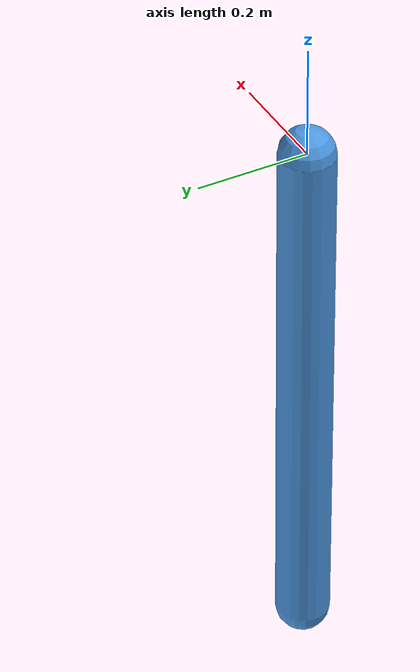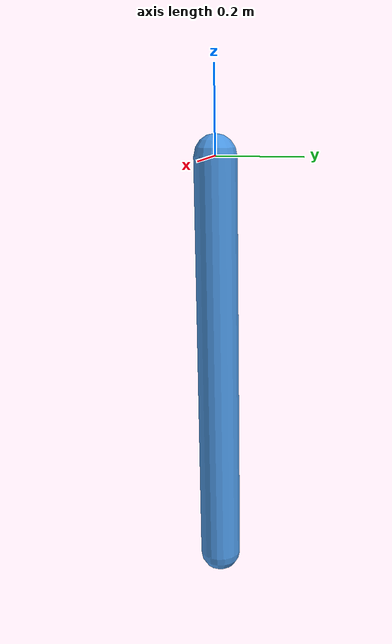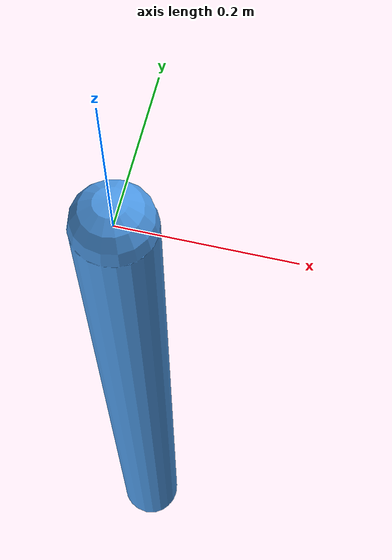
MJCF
<mujoco model="pendulum">

  <compiler angle="radian" inertiafromgeom="true"/>
  <option timestep="0.001" gravity="0 0 -9.81" integrator="RK4"/>

  <default>
    <joint damping="0.00001" armature="0" limited="false"/>
    <geom type="capsule" size="0.05" rgba="0.3 0.6 0.9 1"/>
    <motor ctrlrange="-5 5" gear="1"/>
  </default>

  <worldbody>
    <light pos="2 2 3" dir="-1 -1 -2"/>
    <body name="pendulum" pos="0 0 0">
      <joint name="hinge" type="hinge" axis="0 1 0"/>
      <geom name="link" type="capsule" fromto="0 0 0  0 0 -1" mass="1.0"/>
      <site name="tip" pos="0 0 -1" size="0.02" rgba="1 0.3 0.3 1"/>
    </body>
  </worldbody>

  <actuator>
    <motor name="torque" joint="hinge"/>
  </actuator>

  <sensor>
    <jointpos name="theta" joint="hinge"/>
    <jointvel name="thetadot" joint="hinge"/>
    <actuatorfrc name="tau" actuator="torque"/>
  </sensor>

</mujoco>
